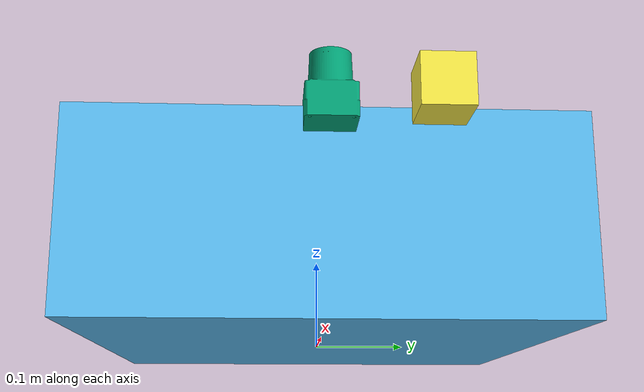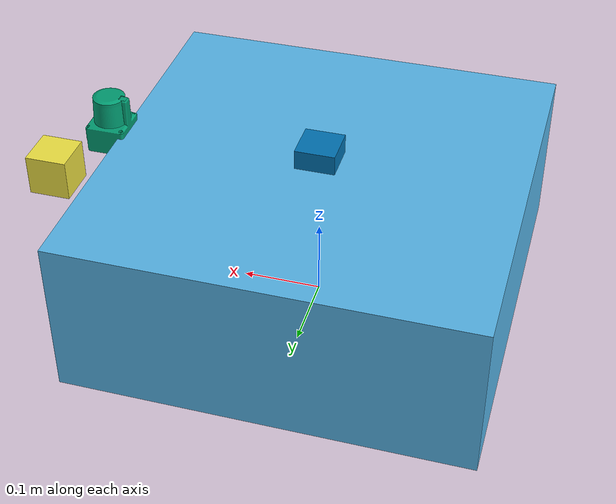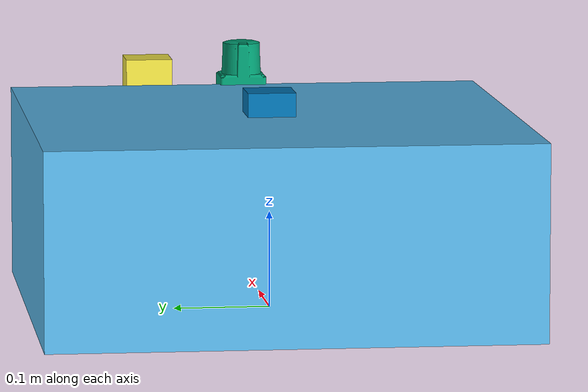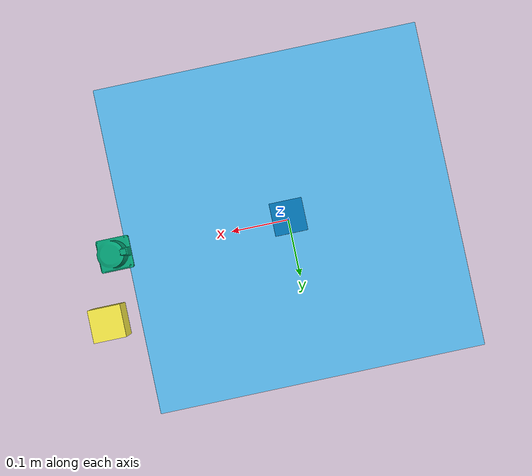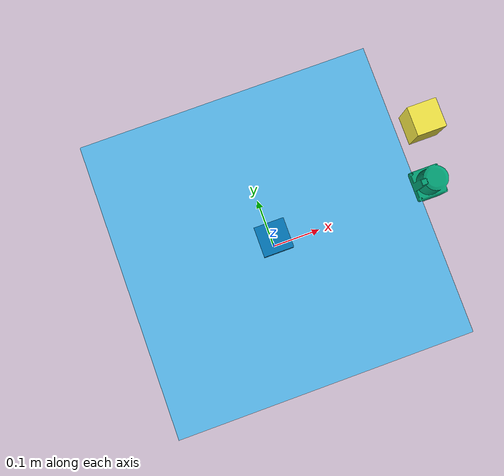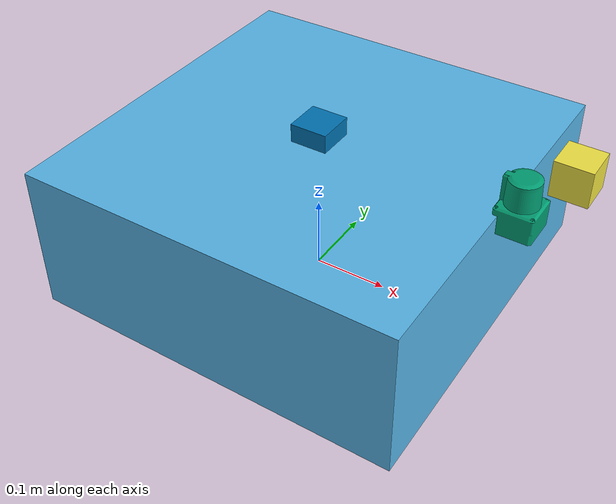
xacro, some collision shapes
<?xml version="1.0"?>
<!-- Revolute-Revolute Manipulator -->
<robot name="ugv" xmlns:xacro="http://www.ros.org/wiki/xacro">

  <!-- Constants for robot dimensions -->
  <xacro:property name="PI" value="3.1415926535897931"/>
  <xacro:property name="mass" value="5" />
  <xacro:property name="length" value="0.813" />
  <xacro:property name="width" value="0.5045" />
  <xacro:property name="height" value="0.202" />
  <xacro:property name="cylinder_length" value="0.025" />
  <xacro:property name="cylinder_radius" value="0.055" />
  <xacro:property name="width_diff" value="0.05" />
  <xacro:property name="height_diff" value="0.05" />
  <xacro:property name="length_diff" value="0.05" />

  <!-- Import all Gazebo-customization elements, including Gazebo colors -->
  <!-- Import Rviz colors -->

  <!-- fixed odom  -->
  <link name="odom">
    <origin xyz="0 0 0" rpy="0 0 0"/>
  </link>

  <joint name="footprint_joint" type="fixed">
    <origin xyz="0 0 0" rpy="0 0 0"/>
    <parent link="odom"/>
    <child link="chassis"/>
  </joint>

  <!-- Base Link -->
  <link name="chassis">
    <collision>
      <origin xyz="0 0 ${height/2.0}" rpy="0 0 0"/>
      <geometry>
	<box size="${width} ${width} ${height}"/>
      </geometry>
    </collision>

    <visual>
      <origin xyz="0 0 ${height/2.0}" rpy="0 0 0"/>
      <geometry>
        <mesh filename="package://testing/meshes/UGV.stl"/>
      </geometry>
    </visual>

    <inertial>
      <origin xyz="0 0 ${height/2.0}" rpy="0 0 0"/>
      <mass value="${mass}"/>
      <inertia
	  ixx="${mass / 12.0 * (width*width + height*height)}" ixy="0.0" ixz="0.0"
	  iyy="${mass / 12.0 * (height*height + width*width)}" iyz="0.0"
	  izz="${mass / 12.0 * (width*width + width*width)}"/>
    </inertial>
  </link>

  <!-- HOKUYO LASER -->
  <joint name="hokuyo_joint" type="fixed">
    <axis xyz="0 0 0" />
    <origin xyz="0.27 0 ${height + 0.025}" rpy="0 0 0"/>
    <parent link="chassis"/>
    <child link="hokuyo_link"/>
  </joint>

  <!-- Hokuyo Laser -->
  <link name="hokuyo_link">
    <collision>
      <origin xyz="0 0 -0.025" rpy="0 0 0"/>
      <geometry>
	<box size="0.051 0.051 0.07"/>
      </geometry>
    </collision>

    <visual>
      <origin xyz="0 0 -0.05" rpy="0 0 0"/>
      <geometry>
        <mesh filename="package://testing/meshes/Hokuyo.stl"/>
      </geometry>
    </visual>

    <inertial>
      <mass value="1e-5" />
      <origin xyz="0 0 -0.05" rpy="0 0 0"/>
      <inertia ixx="1e-6" ixy="0" ixz="0" iyy="1e-6" iyz="0" izz="1e-6" />
    </inertial>
  </link>

  <!-- CAMERA -->
  <joint name="camera_joint" type="fixed">
    <axis xyz="0 0 0" />
    <origin xyz="0.3 0.1 ${height}" rpy="0 0 0"/>
    <parent link="chassis"/>
    <child link="camera_link"/>
  </joint>

  <!-- Camera -->
  <link name="camera_link">
    <collision>
      <origin xyz="0 0 0" rpy="0 0 0"/>
      <geometry>
  	<box size="0.05 0.05 0.05"/>
      </geometry>
    </collision>

    <visual>
      <origin xyz="0 0 0" rpy="0 0 0"/>
      <geometry>
  	<box size="0.05 0.05 0.05"/>
      </geometry>
    </visual>

    <inertial>
      <mass value="1e-5" />
      <origin xyz="0 0 0" rpy="0 0 0"/>
      <inertia ixx="1e-6" ixy="0" ixz="0" iyy="1e-6" iyz="0" izz="1e-6" />
    </inertial>
  </link>

  <!-- IMU -->
  <joint name="imu_joint" type="fixed">
    <axis xyz="0 0 0" />
    <origin xyz="0 0 ${height}" rpy="0 0 0"/>
    <parent link="chassis"/>
    <child link="imu_link"/>
  </joint>

  <link name="imu_link">
    <collision>
      <origin xyz="0 0 0" rpy="0 0 0"/>
      <geometry>
  	<box size="0.05 0.05 0.05"/>
      </geometry>
    </collision>

    <visual>
      <origin xyz="0 0 0" rpy="0 0 0"/>
      <geometry>
  	<box size="0.05 0.05 0.05"/>
      </geometry>
    </visual>

    <inertial>
      <mass value="1e-5" />
      <origin xyz="0 0 0" rpy="0 0 0"/>
      <inertia ixx="1e-6" ixy="0" ixz="0" iyy="1e-6" iyz="0" izz="1e-6" />
    </inertial>
  </link>

</robot>
